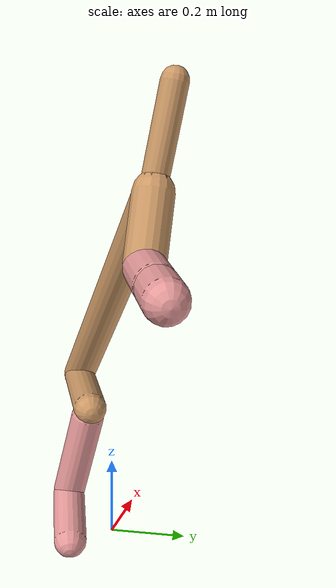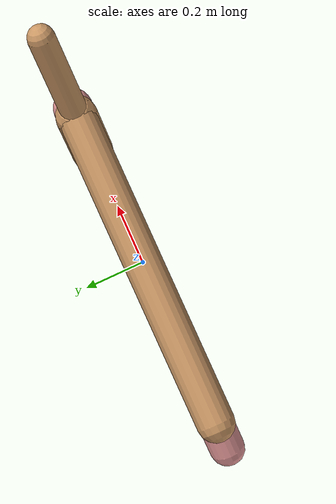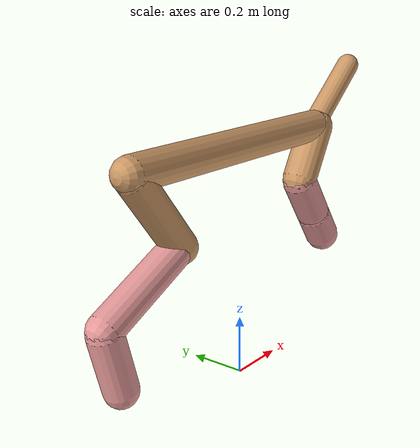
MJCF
<mujoco model="cheetah">
  <compiler angle="radian" coordinate="local" inertiafromgeom="true" settotalmass="14" />
  <default>
    <joint armature=".1" damping=".01" limited="true" solimplimit="0 .8 .03" solreflimit=".02 1" stiffness="8" />
    <geom conaffinity="0" condim="3" contype="1" friction="0.8 .1 .1" rgba="0.8 0.6 .4 1" solimp="0.0 0.8 0.01" solref="0.02 1" />
    <motor ctrllimited="true" ctrlrange="-1 1" />
  </default>
  <size nstack="300000" nuser_geom="1" />
  <option gravity="0 0 -9.81" timestep="0.01" />
  <worldbody>
    <body name="torso" pos="0.0 0.0 0.7957473423272963">
      <joint armature="0" axis="1 0 0" damping="0" limited="false" name="ignorex" pos="0 0 0" stiffness="0" type="slide" />
      <joint armature="0" axis="0 0 1" damping="0" limited="false" name="ignorez" pos="0 0 0" stiffness="0" type="slide" />
      <joint armature="0" axis="0 1 0" damping="0" limited="false" name="ignorey" pos="0 0 0" stiffness="0" type="hinge" />
      <geom fromto="-0.5 0.0 0.0 0.4625873781682327 0.0 0.0" name="torso" size="0.05588354085240927" type="capsule" />
      <geom axisangle="0 1 0 .87" name="head" pos="0.5625873781682327 0.0 0.1" size="0.03996810159692846 0.15" type="capsule" />

      <body name="bthigh" pos="-.5 0 0">
        <joint axis="0 1 0" damping="6" name="bthigh" pos="0 0 0" range="-.52 1.05" stiffness="240" type="hinge" />
        <geom axisangle="0 1 0 -3.8" name="bthigh" pos="0.10717359052225273 0.0 -0.13932566767892854" size="0.05451103241895185 0.15676556325208302" type="capsule" />
        <body name="bshin" pos="0.17434718104450544 0.0 -0.26865133535785707">
          <joint axis="0 1 0" damping="4.5" name="bshin" pos="0 0 0" range="-.785 .785" stiffness="180" type="hinge" />
          <geom axisangle="0 1 0 -2.03" name="bshin" pos="-0.1508863169207853 0.0 -0.07544315846039265" rgba="0.9 0.6 0.6 1" size="0.05451103241895185 0.16217127232974105" type="capsule" />
          <body name="bfoot" pos="-0.3017726338415706 0.0 -0.1508863169207853">
            <joint axis="0 1 0" damping="3" name="bfoot" pos="0 0 0" range="-.4 .785" stiffness="120" type="hinge" />
            <geom axisangle="0 1 0 -.27" name="bfoot" pos="0.03225364527673664 0.0 -0.10428678639478181" rgba="0.9 0.6 0.6 1" size="0.05451103241895185 0.10162733065997107" type="capsule" />
            <inertial mass="10" />
          </body>
        </body>
      </body>
      <body name="fthigh" pos="0.4625873781682327 0.0 0.0">
        <joint axis="0 1 0" damping="4.5" name="fthigh" pos="0 0 0" range="-1.5 0.8" stiffness="180" type="hinge" />
        <geom axisangle="0 1 0 .52" name="fthigh" pos="-0.05471118783013834 0.0 -0.09379060770880857" size="0.06093008263335636 0.10265729046642548" type="capsule" />
        <body name="fshin" pos="-0.10942237566027668 0.0 -0.18758121541761713">
          <joint axis="0 1 0" damping="3" name="fshin" pos="0 0 0" range="-1.2 1.1" stiffness="120" type="hinge" />
          <geom axisangle="0 1 0 -.6" name="fshin" pos="0.050841133835678114 0.0 -0.07039541608016969" rgba="0.9 0.6 0.6 1" size="0.06093008263335636 0.08181708864241428" type="capsule" />
          <body name="ffoot" pos="0.10168226767135623 0.0 -0.14079083216033939">
            <joint axis="0 1 0" damping="1.5" name="ffoot" pos="0 0 0" range="-3.1 -0.3" stiffness="60" type="hinge" />
            <geom axisangle="0 1 0 -.6" name="ffoot" pos="0.036364183936157424 0.0 -0.05656650834513378" rgba="0.9 0.6 0.6 1" size="0.06093008263335636 0.05403015287706605" type="capsule" />
            <inertial mass="10" />
          </body>
        </body>
      </body>
    </body>
  </worldbody>
  <actuator>
    <motor gear="120" joint="bthigh" name="bthigh" />
    <motor gear="90" joint="bshin" name="bshin" />
    <motor gear="60" joint="bfoot" name="bfoot" />
    <motor gear="120" joint="fthigh" name="fthigh" />
    <motor gear="60" joint="fshin" name="fshin" />
    <motor gear="30" joint="ffoot" name="ffoot" />
  </actuator>
</mujoco>
